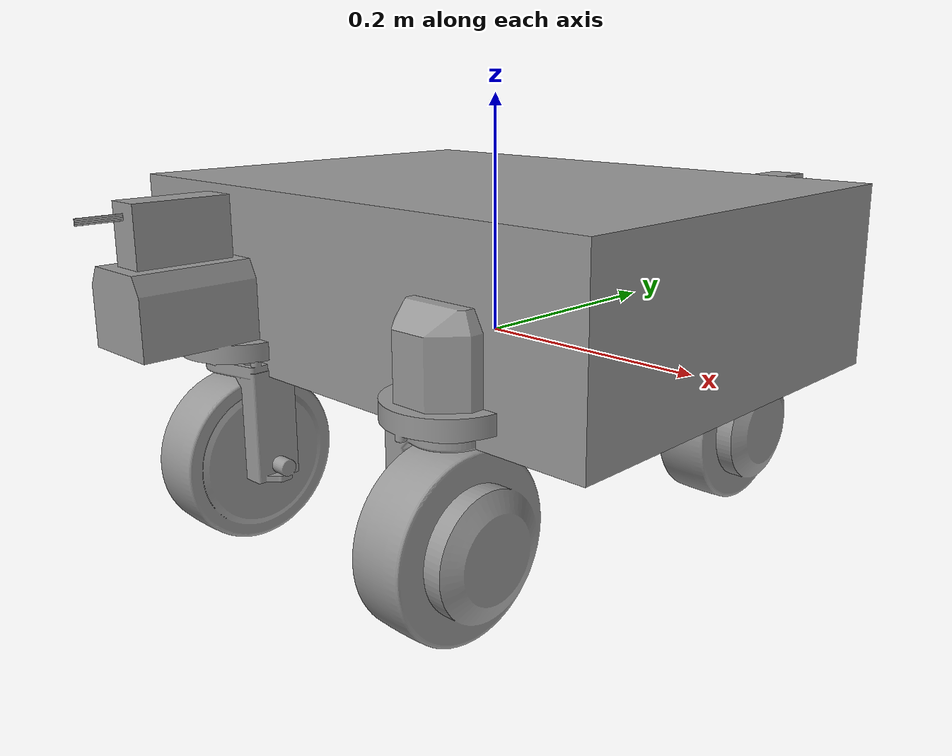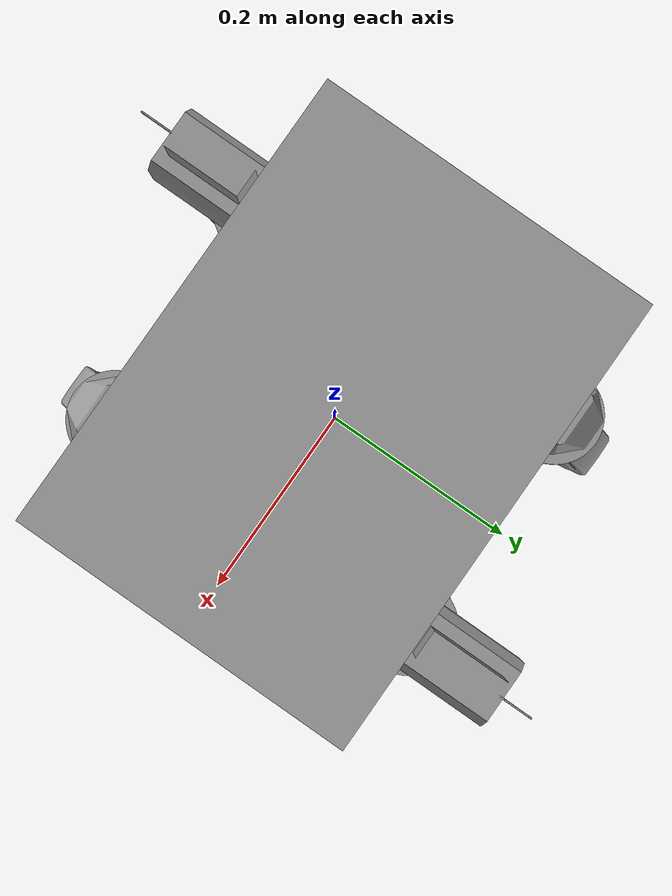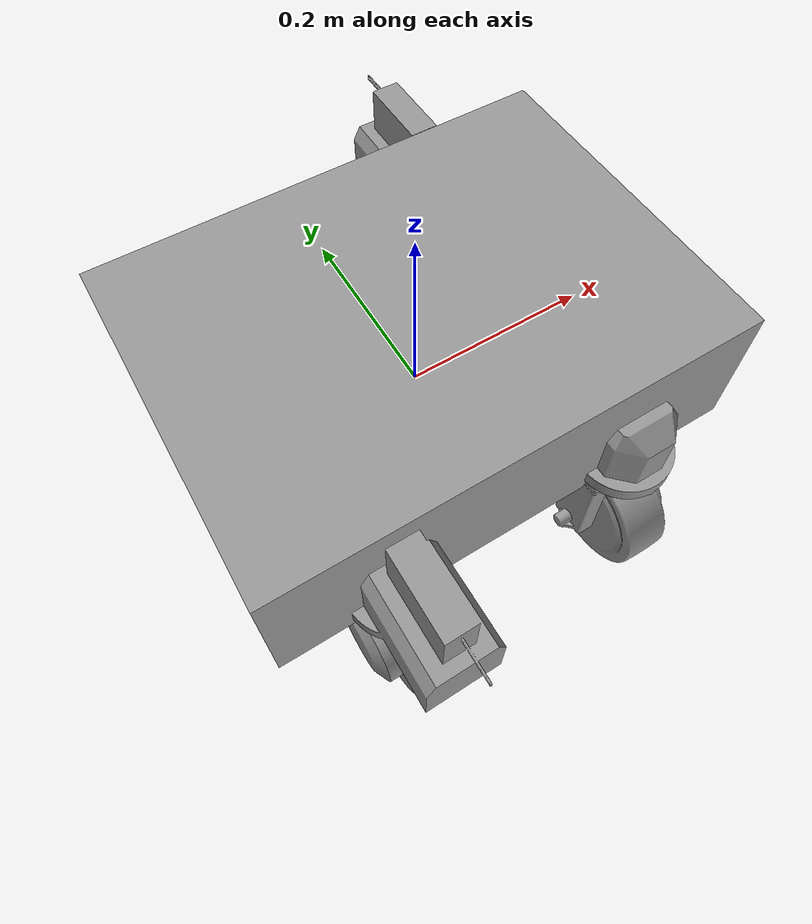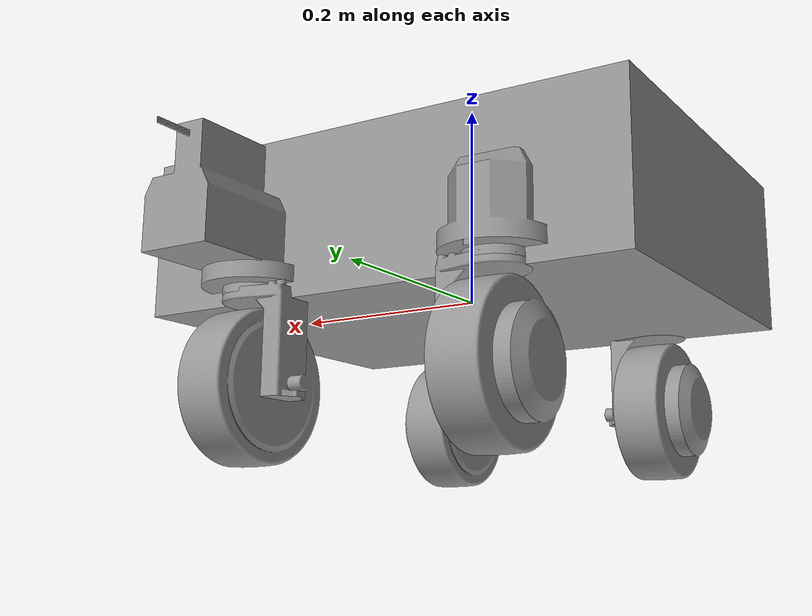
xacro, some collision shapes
<?xml version="1.0"?>
<robot name="diff_drive" xmlns:xacro="http://www.ros.org/wiki/xacro">

  <xacro:arg name="namespace" default="" />

  <material name="orange">
    <color rgba="0.8 0.4 0.0 1.0"/>
  </material>

  <material name="black">
    <color rgba="0 0 0 1.0"/>
  </material>

  <material name="white">
    <color rgba="1 1 1 1.0"/>
  </material>

  <link name="vrtk_link">
    <visual>
      <origin xyz="0.0 0.0 0.0"/>
      <geometry>
        <cylinder length="0.03" radius="0.02"/>
      </geometry>
      <material name="Red">
        <color rgba="1.0 0 0 1.0"/>
      </material>
    </visual>
  </link>

  <link name="base_footprint"/>

  <link name="inertial_link">
    <inertial>
      <mass value="40"/>
      <origin xyz="0.0 0.0 0.0"/>
      <inertia ixx="2.288641" ixy="0" ixz="0" iyy="5.103976" iyz="0" izz="3.431465"/>
    </inertial>
  </link>

 <link name="base_link">
    <visual>
      <geometry>
        <mesh filename="package://fwmini_description/meshes/chassis.stl" scale="0.001 0.001 0.001"/>
      </geometry>
      <origin rpy="1.5707963267948963 0 -1.5707963267948963" xyz="0.0 0.0 0.0"/>
      <material name="gray">
        <color rgba="0.6 0.6 0.6 1.0"/>
      </material>
    </visual>
    <inertial>
      <mass value="21.720294186827278"/>
      <origin rpy="1.5707963267948963 0 0" xyz="0.0 0.0 0.0"/>
      <inertia ixx="0.4263365194675346" ixy="5.304626609180785e-11" ixz="-4.57376315465362e-11" iyy="0.2615601430428813" iyz="-0.00013153368310562288" izz="0.6339417954588755"/>
    </inertial>
    <collision>
      <origin rpy="0 0 0" xyz="0.0 0.0 0.055"/>
      <geometry>
        <box size="0.49 0.36 0.15 " />
      </geometry>
    </collision>
  </link>

<!-- falang003 -->
  <link name="falang003">
    <visual>
      <geometry>
        <mesh filename="package://fwmini_description/meshes/falang003.stl" scale="0.001 0.001 0.001"/>
      </geometry>
      <origin rpy="1.5707963267948963 0 -1.5707963267948963" xyz="-0.175 0.125  0.026"/>
      <material name="gray">
        <color rgba="0.6 0.6 0.6 1.0"/>
      </material>
    </visual>
    <inertial>
      <mass value="0.9194261569579638"/>
      <origin rpy="1.5707963267948968 0 0" xyz="-0.0337596 0.0 0.0614954"/>
      <inertia ixx="0.0012726776231141224" ixy="0.0003517699989336183" ixz="1.4095694929766352e-09" iyy="0.0016872287550903603" iyz="-9.235547795818879e-10" izz="0.0022824069674926705"/>
    </inertial>
  </link>
  <!-- falang007 -->
  <link name="falang007">
    <visual>
      <geometry>
        <mesh filename="package://fwmini_description/meshes/falang007.stl" scale="0.001 0.001 0.001"/>
      </geometry>
      <origin rpy="1.5707963267948963 0 -1.5707963267948963" xyz="-0.175 -0.125  0.026"/>
      <material name="gray">
        <color rgba="0.6 0.6 0.6 1.0"/>
      </material>
    </visual>
    <inertial>
      <mass value="0.9194261569579638"/>
      <origin rpy="1.5707963267948968 0 0" xyz="0.0337596 0.0 0.0614954"/>
      <inertia ixx="0.0012726776231141213" ixy="-0.0003517699989336183" ixz="1.4095694929364843e-09" iyy="0.0016872287550903616" iyz="9.235547795796151e-10" izz="0.0022824069674926696"/>
    </inertial>
  </link>
  <!-- falang011 -->
  <link name="falang011">
    <visual>
      <geometry>
        <mesh filename="package://fwmini_description/meshes/falang011.stl" scale="0.001 0.001 0.001"/>
      </geometry>
      <origin rpy="1.5707963267948963 0 -1.5707963267948963" xyz=" 0.175 0.125  0.026"/>
      <material name="gray">
        <color rgba="0.6 0.6 0.6 1.0"/>
      </material>
    </visual>
    <inertial>
      <mass value="0.9194261569579638"/>
      <origin rpy="1.5707963267948968 0 0" xyz="-0.0337596 0.0 0.0614954"/>
      <inertia ixx="0.0012726776231141213" ixy="0.0003517699989336188" ixz="1.4095694929143954e-09" iyy="0.0016872287550903607" iyz="-9.235547796071238e-10" izz="0.002282406967492669"/>
    </inertial>
  </link>
  <!-- falang015 -->
  <link name="falang015">
    <visual>
      <geometry>
        <mesh filename="package://fwmini_description/meshes/falang015.stl" scale="0.001 0.001 0.001"/>
      </geometry>
      <origin rpy="1.5707963267948963 0 -1.5707963267948963" xyz="0.175 -0.125  0.026"/>
      <material name="gray">
        <color rgba="0.6 0.6 0.6 1.0"/>
      </material>
    </visual>
    <inertial>
      <mass value="0.9194261569579639"/>
      <origin rpy="1.5707963267948968 0 0" xyz="0.0337596 0.0 0.0614954"/>
      <inertia ixx="0.0012726776231141207" ixy="-0.00035176999893361826" ixz="1.4095694929271005e-09" iyy="0.0016872287550903607" iyz="9.235547796205859e-10" izz="0.002282406967492669"/>
    </inertial>
  </link>

 <!-- lunzi -->
  <link name="lunzi">
    <visual>
      <geometry>
        <mesh filename="package://fwmini_description/meshes/lunzi.stl" scale="0.001 0.001 0.001"/>
      </geometry>
      <origin rpy="1.5707963267948963 0 0" xyz=" -0.099 -0.175 0.1085"/>
      <material name="gray">
        <color rgba="0.6 0.6 0.6 1.0"/>
      </material>
    </visual>
    <inertial>
      <mass value="0.9336572162769865"/>
      <origin rpy="1.5707963267948963 0 0" xyz="0.0303029 0.0 0.0"/>
      <inertia ixx="0.0020215448277376693" ixy="-2.0217895507812487e-18" ixz="-1.010894775390625e-18" iyy="0.001326546162440318" iyz="5.054473876953125e-19" izz="0.0013265461624403128"/>
    </inertial>
    <collision>
      <origin rpy="0 1.5707963267948963 0" xyz="0.03 0.0 0.0"/>
      <geometry>
        <cylinder length="0.05" radius="0.07"/>
      </geometry>
    </collision>
  </link>
  <!-- lunzi002 -->
  <link name="lunzi002">
    <visual>
      <geometry>
        <mesh filename="package://fwmini_description/meshes/lunzi002.stl" scale="0.001 0.001 0.001"/>
      </geometry>
      <origin rpy="1.5707963267948963 0 0" xyz="-0.125 -0.175 0.03"/>
      <material name="gray">
        <color rgba="0.6 0.6 0.6 1.0"/>
      </material>
    </visual>
    <inertial>
      <mass value="0.11613399384629902"/>
      <origin rpy="1.5707963267948968 0 0" xyz="-0.0265905 0.0 -0.0270617"/>
      <inertia ixx="0.0001317469699128777" ixy="-3.644906574104803e-05" ixz="-9.165804605841636e-10" iyy="5.7656046094065086e-05" iyz="-7.992722004893423e-10" izz="0.0001524526223984975"/>
    </inertial>
  </link>
    <!-- lunzi004 -->
  <link name="lunzi004">
    <visual>
      <geometry>
        <mesh filename="package://fwmini_description/meshes/lunzi004.stl" scale="0.001 0.001 0.001"/>
      </geometry>
      <origin rpy="1.5707963267948963 0 0" xyz="0.099 -0.175 0.1085 "/>
      <material name="gray">
        <color rgba="0.6 0.6 0.6 1.0"/>
      </material>
    </visual>
    <inertial>
      <mass value="0.9336572162769865"/>
      <origin rpy="1.5707963267948963 0 0" xyz="-0.0303029 0.0 0.0"/>
      <inertia ixx="0.00202154482773767" ixy="2.5272369384765608e-18" ixz="-1.4152526855468747e-17" iyy="0.00132654616244032" iyz="-2.021789550781251e-18" izz="0.0013265461624403158"/>
    </inertial>
    <collision>
      <origin rpy="0 1.5707963267948963 0" xyz="-0.03 0.0 0.0"/>
      <geometry>
        <cylinder length="0.05" radius="0.07"/>
      </geometry>
    </collision>
  </link>
  <!-- lunzi006 -->
  <link name="lunzi006">
    <visual>
      <geometry>
        <mesh filename="package://fwmini_description/meshes/lunzi006.stl" scale="0.001 0.001 0.001"/>
      </geometry>
      <origin rpy="1.5707963267948963 0 0" xyz="0.125 -0.175 0.03"/>
      <material name="gray">
        <color rgba="0.6 0.6 0.6 1.0"/>
      </material>
    </visual>
    <inertial>
      <mass value="0.11613399384629912"/>
      <origin rpy="1.5707963267948963 0 0" xyz="0.0265905 0.0 -0.0270617"/>
      <inertia ixx="0.00013174696991287795" ixy="3.644906574104785e-05" ixz="-9.165804589414596e-10" iyy="5.7656046094067357e-05" iyz="7.992721997469663e-10" izz="0.00015245262239849952"/>
    </inertial>
  </link>
  <!-- lunzi008 -->
  <link name="lunzi008">
    <visual>
      <geometry>
        <mesh filename="package://fwmini_description/meshes/lunzi008.stl" scale="0.001 0.001 0.001"/>
      </geometry>
      <origin rpy="1.5707963267948963 0 0" xyz="-0.099 0.175 0.1085 "/>
      <material name="gray">
        <color rgba="0.6 0.6 0.6 1.0"/>
      </material>
    </visual>
    <inertial>
      <mass value="0.9336572162769863"/>
      <origin rpy="1.5707963267948963 0 0" xyz="0.0303029 0.0 0.0"/>
      <inertia ixx="0.0020215448277376646" ixy="2.5272369384765623e-18" ixz="-4.0435791015625e-18" iyy="0.0013265461624403037" iyz="-1.010894775390625e-18" izz="0.001326546162440306"/>
    </inertial>
    <collision>
      <origin rpy="0 1.5707963267948963 0" xyz="0.03 0.0 0.0"/>
      <geometry>
        <cylinder length="0.05" radius="0.07"/>
      </geometry>
    </collision>
  </link>
  <!-- lunzi010 -->
  <link name="lunzi010">
    <visual>
      <geometry>
        <mesh filename="package://fwmini_description/meshes/lunzi010.stl" scale="0.001 0.001 0.001"/>
      </geometry>
      <origin rpy="1.5707963267948963 0 0" xyz="-0.125 0.175 0.03"/>
      <material name="gray">
        <color rgba="0.6 0.6 0.6 1.0"/>
      </material>
    </visual>
    <inertial>
      <mass value="0.11613399384629908"/>
      <origin rpy="1.5707963267948963 0 0" xyz="-0.0265905 0.0 -0.0270617"/>
      <inertia ixx="0.00013174696991287795" ixy="-3.644906574104789e-05" ixz="-9.165804599523544e-10" iyy="5.7656046094068115e-05" iyz="-7.992722004893422e-10" izz="0.0001524526223984998"/>
    </inertial>
  </link>
  <!-- lunzi012 -->
  <link name="lunzi012">
    <visual>
      <geometry>
        <mesh filename="package://fwmini_description/meshes/lunzi012.stl" scale="0.001 0.001 0.001"/>
      </geometry>
      <origin rpy="1.5707963267948963 0 0" xyz="0.099 0.175 0.1085 "/>
      <material name="gray">
        <color rgba="0.6 0.6 0.6 1.0"/>
      </material>
    </visual>
    <inertial>
      <mass value="0.9336572162769864"/>
      <origin rpy="1.5707963267948963 0 0" xyz="-0.0303029 0.0 0.0"/>
      <inertia ixx="0.0020215448277376633" ixy="0.0" ixz="-2.1228790283203124e-17" iyy="0.0013265461624403058" iyz="1.010894775390631e-18" izz="0.0013265461624403097"/>
    </inertial>
    <collision>
      <origin rpy="0 1.5707963267948963 0" xyz="-0.03 0.0 0.0"/>
      <geometry>
        <cylinder length="0.05" radius="0.07"/>
      </geometry>
    </collision>
  </link>
  <!-- lunzi014 -->
  <link name="lunzi014">
    <visual>
      <geometry>
        <mesh filename="package://fwmini_description/meshes/lunzi014.stl" scale="0.001 0.001 0.001"/>
      </geometry>
      <origin rpy="1.5707963267948963 0 0" xyz="0.125 0.175 0.03"/>
      <material name="gray">
        <color rgba="0.6 0.6 0.6 1.0"/>
      </material>
    </visual>
    <inertial>
      <mass value="0.11613399384629909"/>
      <origin rpy="1.5707963267948963 0 0" xyz="0.0265905 0.0 -0.0270617"/>
      <inertia ixx="0.00013174696991287833" ixy="3.644906574104792e-05" ixz="-9.165804589414596e-10" iyy="5.765604609406838e-05" iyz="7.992721996995808e-10" izz="0.00015245262239849927"/>
    </inertial>
  </link>

  <joint name="robot_to_falang003" type="fixed">
    <parent link="base_link"/>
    <child link="falang003"/>
    <origin rpy="0 0 0" xyz="0.125 0.17507 -0.019"/>
    <axis xyz="0 0 1"/>
  </joint>

  <joint name="robot_to_falang007" type="fixed">
    <parent link="base_link"/>
    <child link="falang007"/>
    <origin rpy="0 0 0" xyz="-0.125 0.17493 -0.019 "/>
    <axis xyz="0 0 1"/>
  </joint>

  <joint name="robot_to_falang011" type="fixed">
    <parent link="base_link"/>
    <child link="falang011"/>
    <origin rpy="0 0 0" xyz="0.125 -0.17493 -0.019"/>
    <axis xyz="0 0 1"/>
  </joint>

  <joint name="robot_to_falang015" type="fixed">
    <parent link="base_link"/>
    <child link="falang015"/>
    <origin rpy="0 0 0" xyz="-0.125 -0.17507 -0.019  "/>
    <axis xyz="0 0 1"/>
  </joint>

  <joint name="falang003_to_lunzi002" type="continuous">
    <parent link="falang003"/>
    <child link="lunzi002"/>
    <origin rpy="0 0 0" xyz="0.0 0.0 0.0"/>
    <axis xyz="0 0 1"/>
  </joint>

  <joint name="falang007_to_lunzi006" type="continuous">
    <parent link="falang007"/>
    <child link="lunzi006"/>
    <origin rpy="0 0 0" xyz="0.0 0.0 0.00"/>
    <axis xyz="0 0 1"/>
  </joint>

  <joint name="falang011_to_lunzi010" type="continuous">
    <parent link="falang011"/>
    <child link="lunzi010"/>
    <origin rpy="0 0 0" xyz="0.0 0.0 0.00"/>
    <axis xyz="0 0 1"/>
  </joint>

    <joint name="falang015_to_lunzi014" type="continuous">
    <parent link="falang015"/>
    <child link="lunzi014"/>
    <origin rpy="0 0 0" xyz="0.0 0.0 0.00"/>
    <axis xyz="0 0 1"/>
  </joint>

  <joint name="lunzi002_to_lunzi" type="continuous">
    <parent link="lunzi002"/>
    <child link="lunzi"/>
    <origin rpy="0 0 0" xyz=" -0.027 0.0 -0.077"/>
    <axis xyz="1 0 0"/>
  </joint>

  <joint name="lunzi006_to_lunzi004" type="continuous">
    <parent link="lunzi006"/>
    <child link="lunzi004"/>
    <origin rpy="0 0 0" xyz="0.027 0.0 -0.077"/>
    <axis xyz="1 0 0"/>
  </joint>

  <joint name="lunzi010_to_lunzi008" type="continuous">
    <parent link="lunzi010"/>
    <child link="lunzi008"/>
    <origin rpy="0 0 0" xyz="-0.027 0.0 -0.077"/>
    <axis xyz="1 0 0"/>
  </joint>

  <joint name="lunzi014_to_lunzi012" type="continuous">
    <parent link="lunzi014"/>
    <child link="lunzi012"/>
    <origin rpy="0 0 0" xyz="0.027 0.0 -0.077"/>
    <axis xyz="1 0 0"/>
  </joint>

  <joint name="vrtk_base_joint" type="fixed">
    <parent link="vrtk_link"/>
    <child link="base_link"/>
    <origin xyz="0.0 0.0 0.0" rpy="0 0 0"/>
  </joint>

  <joint name="base_footprint_joint" type="fixed">
    <origin rpy="0 0 0" xyz="0 0 -0.23479"/>
    <parent link="base_link"/>
    <child link="base_footprint"/>
  </joint>

  <joint name="inertial_joint" type="fixed">
    <origin rpy="0 0 0" xyz="0 0 0"/>
    <parent link="base_link"/>
    <child link="inertial_link"/>
  </joint>

  <ros2_control name="GazeboSimSystem" type="system">
    <hardware>
      <plugin>gz_ros2_control/GazeboSimSystem</plugin>
    </hardware>
    <joint name="falang003_to_lunzi002">
        <command_interface name="position">
            <param name="min">-1000</param>
            <param name="max">1000</param>
        </command_interface>
        <command_interface name="velocity">
            <param name="min">-1000</param>
            <param name="max">1000</param>
        </command_interface>
        <command_interface name="effort">
            <param name="min">-1000</param>
            <param name="max">1000</param>
        </command_interface>
        <state_interface name="position"/>
        <state_interface name="velocity"/>
        <state_interface name="effort"/>
    </joint>
    <joint name="lunzi002_to_lunzi">
        <command_interface name="position">
            <param name="min">-1000</param>
            <param name="max">1000</param>
        </command_interface>
        <command_interface name="velocity">
            <param name="min">-1000</param>
            <param name="max">1000</param>
        </command_interface>
        <command_interface name="effort">
            <param name="min">-1000</param>
            <param name="max">1000</param>
        </command_interface>
        <state_interface name="position"/>
        <state_interface name="velocity"/>
        <state_interface name="effort"/>
    </joint>
    <joint name="falang007_to_lunzi006">
        <command_interface name="position">
            <param name="min">-1000</param>
            <param name="max">1000</param>
        </command_interface>
        <command_interface name="velocity">
            <param name="min">-1000</param>
            <param name="max">1000</param>
        </command_interface>
        <command_interface name="effort">
            <param name="min">-1000</param>
            <param name="max">1000</param>
        </command_interface>
        <state_interface name="position"/>
        <state_interface name="velocity"/>
        <state_interface name="effort"/>
    </joint>
    <joint name="lunzi006_to_lunzi004">
        <command_interface name="position">
            <param name="min">-1000</param>
            <param name="max">1000</param>
        </command_interface>
        <command_interface name="velocity">
            <param name="min">-1000</param>
            <param name="max">1000</param>
        </command_interface>
        <command_interface name="effort">
            <param name="min">-1000</param>
            <param name="max">1000</param>
        </command_interface>
        <state_interface name="position"/>
        <state_interface name="velocity"/>
        <state_interface name="effort"/>
    </joint>
    <joint name="falang011_to_lunzi010">
        <command_interface name="position">
            <param name="min">-1000</param>
            <param name="max">1000</param>
        </command_interface>
        <command_interface name="velocity">
            <param name="min">-1000</param>
            <param name="max">1000</param>
        </command_interface>
        <command_interface name="effort">
            <param name="min">-1000</param>
            <param name="max">1000</param>
        </command_interface>
        <state_interface name="position"/>
        <state_interface name="velocity"/>
        <state_interface name="effort"/>
    </joint>
    <joint name="lunzi010_to_lunzi008">
        <command_interface name="position">
            <param name="min">-1000</param>
            <param name="max">1000</param>
        </command_interface>
        <command_interface name="velocity">
            <param name="min">-1000</param>
            <param name="max">1000</param>
        </command_interface>
        <command_interface name="effort">
            <param name="min">-1000</param>
            <param name="max">1000</param>
        </command_interface>
        <state_interface name="position"/>
        <state_interface name="velocity"/>
        <state_interface name="effort"/>
    </joint>
    <joint name="falang015_to_lunzi014">
        <command_interface name="position">
            <param name="min">-1000</param>
            <param name="max">1000</param>
        </command_interface>
        <command_interface name="velocity">
            <param name="min">-1000</param>
            <param name="max">1000</param>
        </command_interface>
        <command_interface name="effort">
            <param name="min">-1000</param>
            <param name="max">1000</param>
        </command_interface>
        <state_interface name="position"/>
        <state_interface name="velocity"/>
        <state_interface name="effort"/>
    </joint>
    <joint name="lunzi014_to_lunzi012">
        <command_interface name="position">
            <param name="min">-1000</param>
            <param name="max">1000</param>
        </command_interface>
        <command_interface name="velocity">
            <param name="min">-1000</param>
            <param name="max">1000</param>
        </command_interface>
        <command_interface name="effort">
            <param name="min">-1000</param>
            <param name="max">1000</param>
        </command_interface>
        <state_interface name="position"/>
        <state_interface name="velocity"/>
        <state_interface name="effort"/>
    </joint>
  </ros2_control>

  <gazebo>
    <!-- Joint state publisher -->
    <plugin filename="gz_ros2_control-system" name="gz_ros2_control::GazeboSimROS2ControlPlugin">
      <ros>
        <namespace>$(arg namespace)</namespace>
      </ros>
      <parameters>$(find fwmini_description)/config/diff_drive_controller.yaml</parameters>
    </plugin>
  </gazebo>

</robot>
